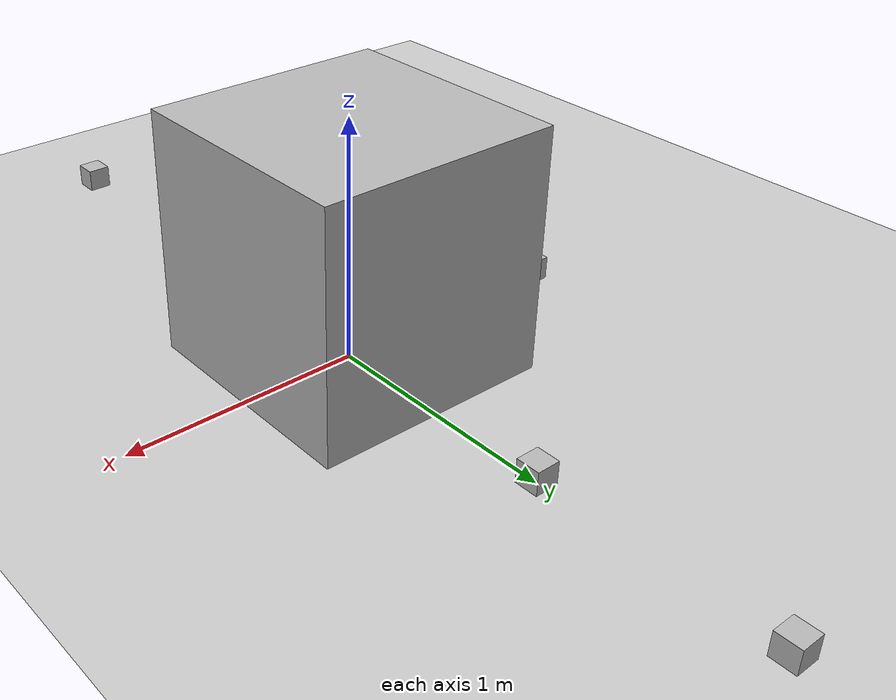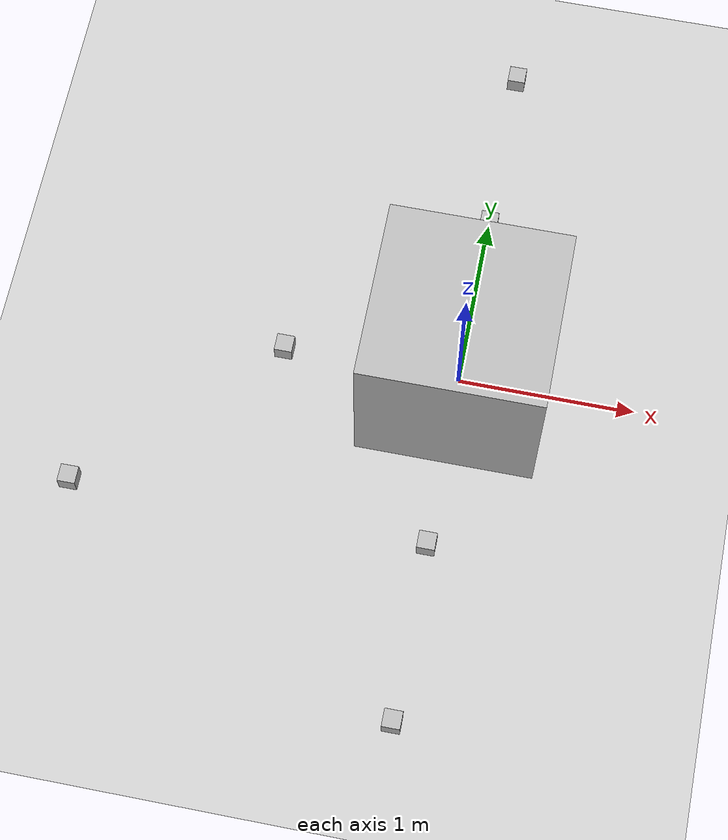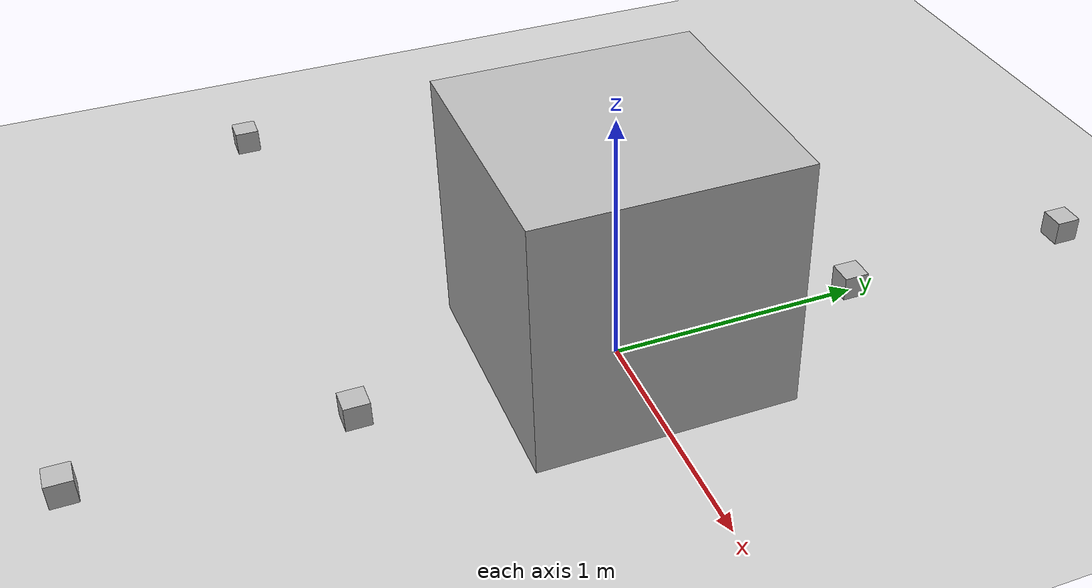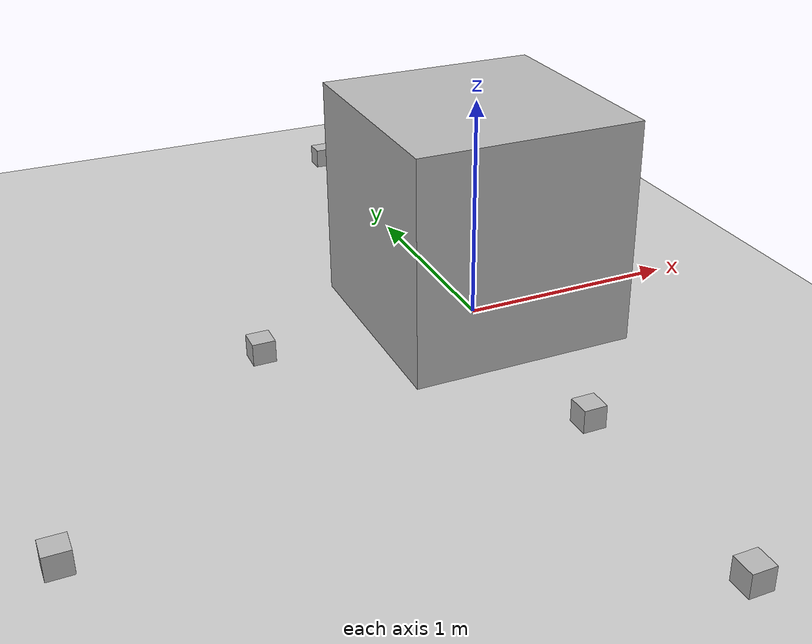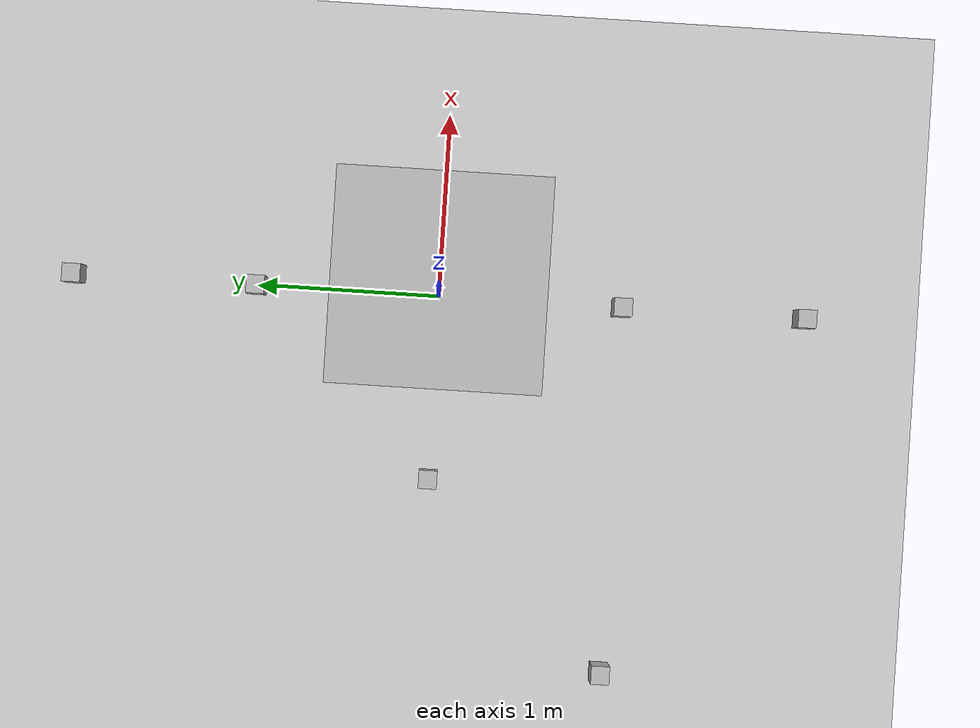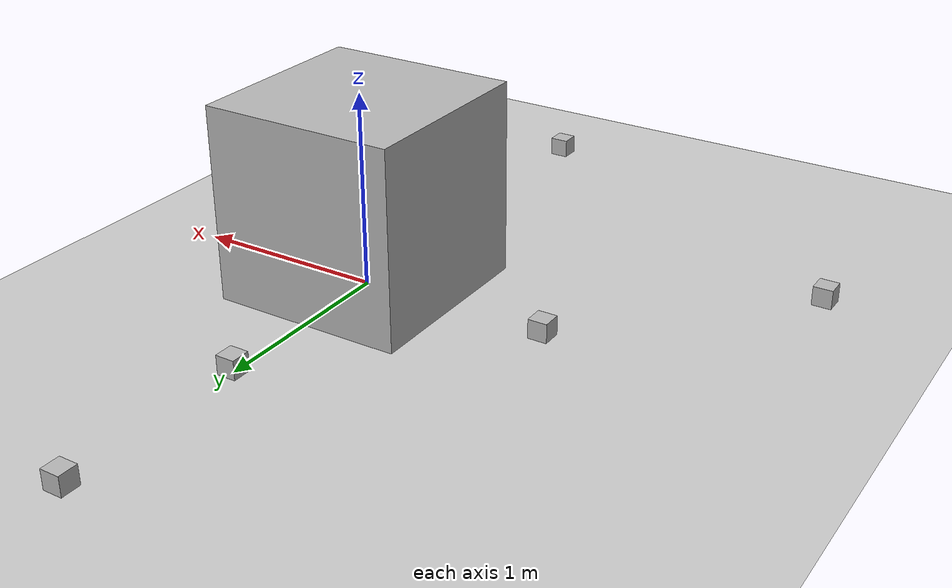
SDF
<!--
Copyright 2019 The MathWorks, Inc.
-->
<sdf version="1.4">
 <world name="default">
  <include><uri>model://ground_plane</uri></include>
  <include><uri>model://sun</uri></include>
  <model name="box">
   <pose>0.0 0.0 0.5 0.0 0.0 0.0</pose>
   <link name="link">
    <inertial>
     <mass>1.0</mass>
     <inertia><ixx>0.1666</ixx><iyy>0.1666</iyy><izz>0.1666</izz><ixy>0</ixy><ixz>0</ixz><iyz>0</iyz></inertia>
    </inertial>
    <collision name="collision"><geometry><box><size>1 1 1</size></box></geometry></collision>
    <visual name="visual"><geometry><box><size>1 1 1</size></box></geometry></visual>
   </link>
   <joint type="revolute" name="joint">
    <child>link</child>
    <parent>link</parent>
    <axis><xyz>0 0 0</xyz></axis>
   </joint>
  </model>
  <model name="camera0">
   <pose>0 1 0.05 0 0 0</pose>
   <link name="link">
    <inertial>
     <mass>0.1</mass>
     <inertia><ixx>0.000166667</ixx><iyy>0.000166667</iyy><izz>0.000166667</izz></inertia>
    </inertial>
    <collision name="collision"><geometry><box><size>0.1 0.1 0.1</size></box></geometry></collision>
    <visual name="visual"><geometry><box><size>0.1 0.1 0.1</size></box></geometry></visual>
    <sensor name="camera" type="camera">
     <camera>
      <horizontal_fov>1.047</horizontal_fov>
      <image><width>320</width><height>240</height></image>
      <clip><near>0.1</near><far>100</far></clip>
     </camera>
     <always_on>1</always_on>
     <update_rate>200</update_rate>
     <visualize>true</visualize>
    </sensor>
   </link>
  </model>
  <model name="camera1">
   <pose>0 2 0.05 0 0 0</pose>
   <link name="link">
    <inertial>
     <mass>0.1</mass>
     <inertia><ixx>0.000166667</ixx><iyy>0.000166667</iyy><izz>0.000166667</izz></inertia>
    </inertial>
    <collision name="collision"><geometry><box><size>0.1 0.1 0.1</size></box></geometry></collision>
    <visual name="visual"><geometry><box><size>0.1 0.1 0.1</size></box></geometry></visual>
    <sensor name="camera" type="camera">
     <camera>
      <horizontal_fov>1.047</horizontal_fov>
      <image><width>320</width><height>240</height></image>
      <clip><near>0.1</near><far>100</far></clip>
     </camera>
     <always_on>1</always_on>
     <update_rate>200</update_rate>
     <visualize>true</visualize>
    </sensor>
   </link>
  </model>
  <model name="depth_camera0">
   <link name="link">
    <pose>0 -1 0.05 0 0 0</pose>
    <inertial>
     <mass>0.1</mass>
     <inertia><ixx>0.000166667</ixx><iyy>0.000166667</iyy><izz>0.000166667</izz></inertia>
    </inertial>
    <collision name="collision"><geometry><box><size>0.1 0.1 0.1</size></box></geometry></collision>
    <visual name="visual"><geometry><box><size>0.1 0.1 0.1</size></box></geometry></visual>
    <sensor name="camera" type="depth">
     <camera>
      <horizontal_fov>1.047</horizontal_fov>
      <image><width>320</width><height>240</height></image>
      <clip><near>0.1</near><far>100</far></clip>
     </camera>
     <always_on>1</always_on>
     <update_rate>200</update_rate>
     <visualize>true</visualize>
    </sensor>
   </link>
  </model>
  <model name="depth_camera1">
   <link name="link">
    <pose>0 -2 0.05 0 0 0</pose>
    <inertial>
     <mass>0.1</mass>
     <inertia><ixx>0.000166667</ixx><iyy>0.000166667</iyy><izz>0.000166667</izz></inertia>
    </inertial>
    <collision name="collision"><geometry><box><size>0.1 0.1 0.1</size></box></geometry></collision>
    <visual name="visual"><geometry><box><size>0.1 0.1 0.1</size></box></geometry></visual>
    <sensor name="camera" type="depth">
     <camera>
      <horizontal_fov>1.047</horizontal_fov>
      <image><width>320</width><height>240</height></image>
      <clip><near>0.1</near><far>100</far></clip>
     </camera>
     <always_on>1</always_on>
     <update_rate>200</update_rate>
     <visualize>true</visualize>
    </sensor>
   </link>
  </model>
  <model name="imu0">
   <link name="link">
    <pose>-2 -1 0.05 0 0 0</pose>
    <inertial><mass>0.1</mass></inertial>
    <visual name="visual"><geometry><box><size>0.1 0.1 0.1</size></box></geometry></visual>
    <collision name="collision"><geometry><box><size>0.1 0.1 0.1</size></box></geometry></collision>
    <sensor name="imu" type="imu">
     <imu>
      <angular_velocity>
       <x>
        <noise type="gaussian">
         <mean>0.0</mean>
         <stddev>2e-4</stddev>
         <bias_mean>0.0000075</bias_mean>
         <bias_stddev>0.0000008</bias_stddev>
        </noise>
       </x>
       <y>
        <noise type="gaussian">
         <mean>0.0</mean>
         <stddev>2e-4</stddev>
         <bias_mean>0.0000075</bias_mean>
         <bias_stddev>0.0000008</bias_stddev>
        </noise>
       </y>
       <z>
        <noise type="gaussian">
         <mean>0.0</mean>
         <stddev>2e-4</stddev>
         <bias_mean>0.0000075</bias_mean>
         <bias_stddev>0.0000008</bias_stddev>
        </noise>
       </z>
      </angular_velocity>
      <linear_acceleration>
       <x>
        <noise type="gaussian">
         <mean>0.0</mean>
         <stddev>1.7e-2</stddev>
         <bias_mean>0.1</bias_mean>
         <bias_stddev>0.001</bias_stddev>
        </noise>
       </x>
       <y>
        <noise type="gaussian">
         <mean>0.0</mean>
         <stddev>1.7e-2</stddev>
         <bias_mean>0.1</bias_mean>
         <bias_stddev>0.001</bias_stddev>
        </noise>
       </y>
       <z>
        <noise type="gaussian">
         <mean>0.0</mean>
         <stddev>1.7e-2</stddev>
         <bias_mean>0.1</bias_mean>
         <bias_stddev>0.001</bias_stddev>
        </noise>
       </z>
      </linear_acceleration>
     </imu>
     <always_on>1</always_on>
     <update_rate>200</update_rate>
    </sensor>
   </link>
  </model>
  <model name="imu1">
   <link name="link">
    <pose>-1 0 0.05 0 0 0</pose>
    <inertial><mass>0.1</mass></inertial>
    <visual name="visual"><geometry><box><size>0.1 0.1 0.1</size></box></geometry></visual>
    <collision name="collision"><geometry><box><size>0.1 0.1 0.1</size></box></geometry></collision>
    <sensor name="imu" type="imu">
     <imu>
      <angular_velocity>
       <x>
        <noise type="gaussian">
         <mean>0.0</mean>
         <stddev>2e-4</stddev>
         <bias_mean>0.0000075</bias_mean>
         <bias_stddev>0.0000008</bias_stddev>
        </noise>
       </x>
       <y>
        <noise type="gaussian">
         <mean>0.0</mean>
         <stddev>2e-4</stddev>
         <bias_mean>0.0000075</bias_mean>
         <bias_stddev>0.0000008</bias_stddev>
        </noise>
       </y>
       <z>
        <noise type="gaussian">
         <mean>0.0</mean>
         <stddev>2e-4</stddev>
         <bias_mean>0.0000075</bias_mean>
         <bias_stddev>0.0000008</bias_stddev>
        </noise>
       </z>
      </angular_velocity>
      <linear_acceleration>
       <x>
        <noise type="gaussian">
         <mean>0.0</mean>
         <stddev>1.7e-2</stddev>
         <bias_mean>0.1</bias_mean>
         <bias_stddev>0.001</bias_stddev>
        </noise>
       </x>
       <y>
        <noise type="gaussian">
         <mean>0.0</mean>
         <stddev>1.7e-2</stddev>
         <bias_mean>0.1</bias_mean>
         <bias_stddev>0.001</bias_stddev>
        </noise>
       </y>
       <z>
        <noise type="gaussian">
         <mean>0.0</mean>
         <stddev>1.7e-2</stddev>
         <bias_mean>0.1</bias_mean>
         <bias_stddev>0.001</bias_stddev>
        </noise>
       </z>
      </linear_acceleration>
     </imu>
     <always_on>1</always_on>
     <update_rate>200</update_rate>
    </sensor>
   </link>
  </model>
  <plugin name="GazeboPlugin" filename="libGazeboCoSimPlugin.so"><portNumber>14581</portNumber></plugin>
 </world>
</sdf>
